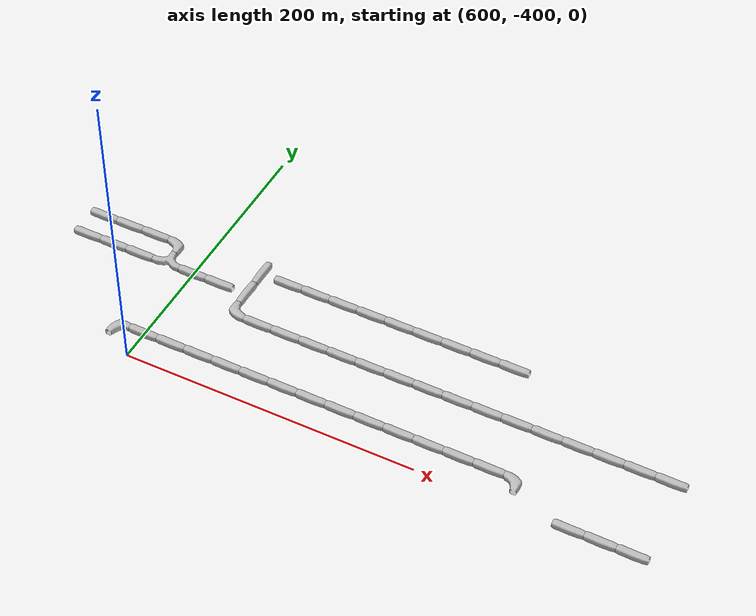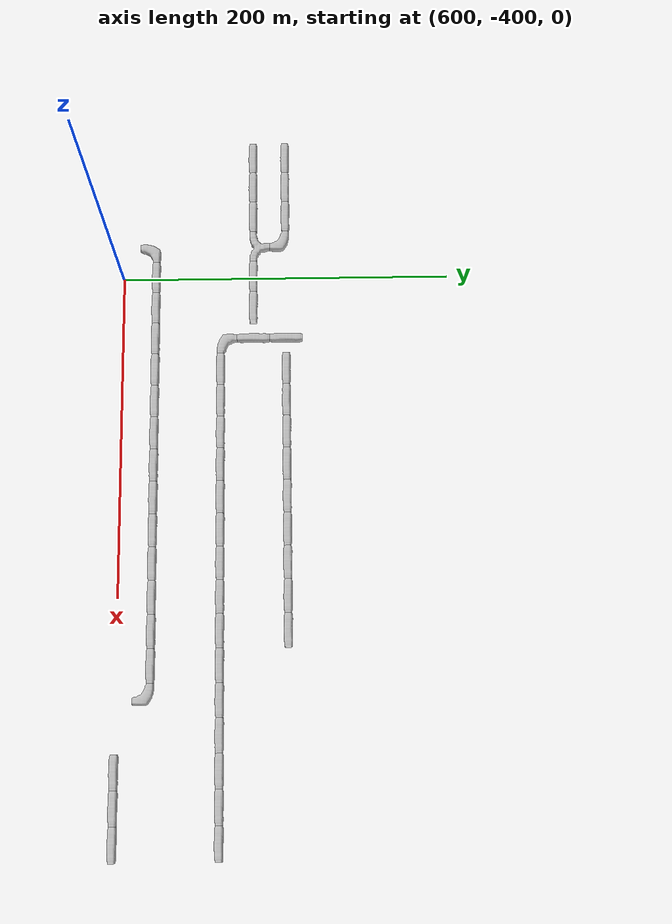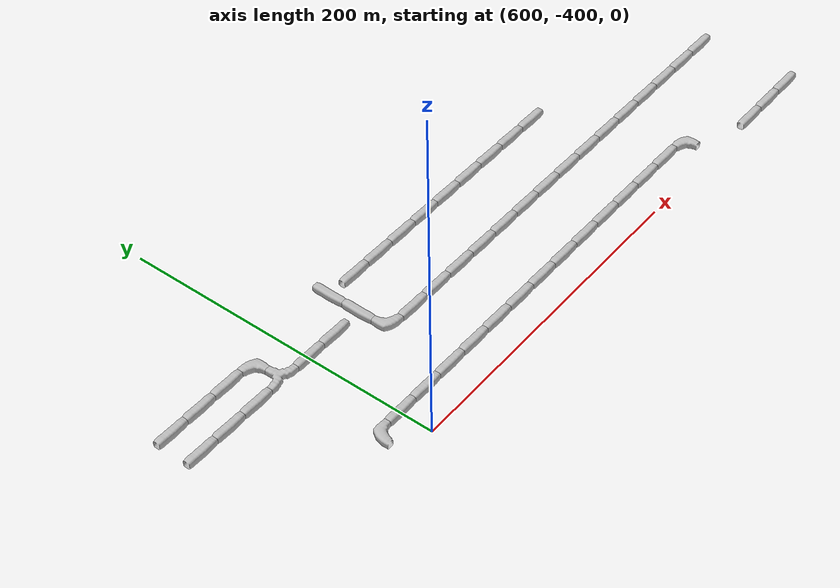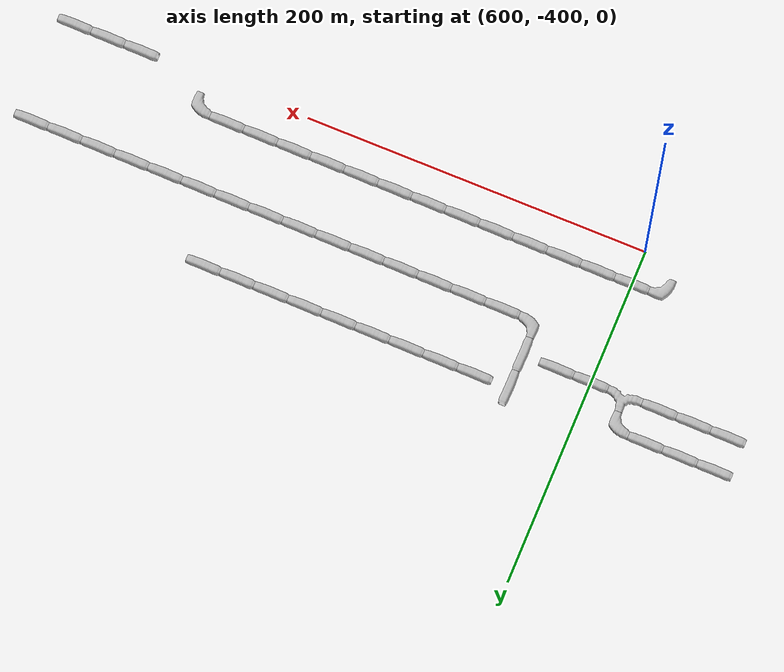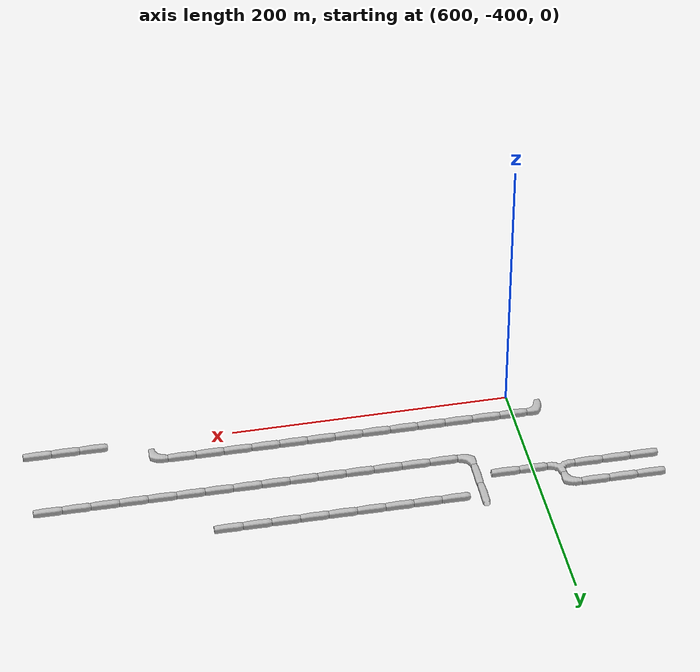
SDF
<sdf version="1.6">
 <world name="cave_32000_2">
  <include>
   <static>true</static>
   <name>cave_32_-15</name>
   <pose>640 -300 0 0 0 0.0</pose>
   <uri>model://cave_straight_20m</uri>
  </include>
  <include>
   <static>true</static>
   <name>cave_32_-16</name>
   <pose>640 -320 0 0 0 0.0</pose>
   <uri>model://cave_straight_20m</uri>
  </include>
  <include>
   <static>true</static>
   <name>cave_32_-17</name>
   <pose>640 -340 0 0 0 0.0</pose>
   <uri>model://cave_L_20m</uri>
  </include>
  <include>
   <static>true</static>
   <name>cave_33_-17</name>
   <pose>660 -340 0 0 0 1.5707963267948966</pose>
   <uri>model://cave_straight_20m</uri>
  </include>
  <include>
   <static>true</static>
   <name>cave_34_-17</name>
   <pose>680 -340 0 0 0 1.5707963267948966</pose>
   <uri>model://cave_straight_20m</uri>
  </include>
  <include>
   <static>true</static>
   <name>cave_35_-17</name>
   <pose>700 -340 0 0 0 1.5707963267948966</pose>
   <uri>model://cave_straight_20m</uri>
  </include>
  <include>
   <static>true</static>
   <name>cave_36_-17</name>
   <pose>720 -340 0 0 0 1.5707963267948966</pose>
   <uri>model://cave_straight_20m</uri>
  </include>
  <include>
   <static>true</static>
   <name>cave_37_-17</name>
   <pose>740 -340 0 0 0 1.5707963267948966</pose>
   <uri>model://cave_straight_20m</uri>
  </include>
  <include>
   <static>true</static>
   <name>cave_38_-17</name>
   <pose>760 -340 0 0 0 1.5707963267948966</pose>
   <uri>model://cave_straight_20m</uri>
  </include>
  <include>
   <static>true</static>
   <name>cave_39_-17</name>
   <pose>780 -340 0 0 0 1.5707963267948966</pose>
   <uri>model://cave_straight_20m</uri>
  </include>
  <include>
   <static>true</static>
   <name>cave_40_-17</name>
   <pose>800 -340 0 0 0 1.5707963267948966</pose>
   <uri>model://cave_straight_20m</uri>
  </include>
  <include>
   <static>true</static>
   <name>cave_41_-17</name>
   <pose>820 -340 0 0 0 1.5707963267948966</pose>
   <uri>model://cave_straight_20m</uri>
  </include>
  <include>
   <static>true</static>
   <name>cave_42_-17</name>
   <pose>840 -340 0 0 0 1.5707963267948966</pose>
   <uri>model://cave_straight_20m</uri>
  </include>
  <include>
   <static>true</static>
   <name>cave_43_-17</name>
   <pose>860 -340 0 0 0 1.5707963267948966</pose>
   <uri>model://cave_straight_20m</uri>
  </include>
  <include>
   <static>true</static>
   <name>cave_44_-17</name>
   <pose>880 -340 0 0 0 1.5707963267948966</pose>
   <uri>model://cave_straight_20m</uri>
  </include>
  <include>
   <static>true</static>
   <name>cave_45_-17</name>
   <pose>900 -340 0 0 0 1.5707963267948966</pose>
   <uri>model://cave_straight_20m</uri>
  </include>
  <include>
   <static>true</static>
   <name>cave_46_-17</name>
   <pose>920 -340 0 0 0 1.5707963267948966</pose>
   <uri>model://cave_straight_20m</uri>
  </include>
  <include>
   <static>true</static>
   <name>cave_47_-17</name>
   <pose>940 -340 0 0 0 1.5707963267948966</pose>
   <uri>model://cave_straight_20m</uri>
  </include>
  <include>
   <static>true</static>
   <name>cave_26_-15</name>
   <pose>520 -300 0 0 0 1.5707963267948966</pose>
   <uri>model://cave_straight_20m</uri>
  </include>
  <include>
   <static>true</static>
   <name>cave_27_-15</name>
   <pose>540 -300 0 0 0 1.5707963267948966</pose>
   <uri>model://cave_straight_20m</uri>
  </include>
  <include>
   <static>true</static>
   <name>cave_28_-15</name>
   <pose>560 -300 0 0 0 1.5707963267948966</pose>
   <uri>model://cave_straight_20m</uri>
  </include>
  <include>
   <static>true</static>
   <name>cave_29_-15</name>
   <pose>580 -300 0 0 0 3.141592653589793</pose>
   <uri>model://cave_L_20m</uri>
  </include>
  <include>
   <static>true</static>
   <name>cave_29_-16</name>
   <pose>580 -320 0 0 0 0.0</pose>
   <uri>model://cave_3way_20m</uri>
  </include>
  <include>
   <static>true</static>
   <name>cave_30_-16</name>
   <pose>600 -320 0 0 0 1.5707963267948966</pose>
   <uri>model://cave_straight_20m</uri>
  </include>
  <include>
   <static>true</static>
   <name>cave_31_-16</name>
   <pose>620 -320 0 0 0 1.5707963267948966</pose>
   <uri>model://cave_straight_20m</uri>
  </include>
  <include>
   <static>true</static>
   <name>cave_28_-16</name>
   <pose>560 -320 0 0 0 1.5707963267948966</pose>
   <uri>model://cave_straight_20m</uri>
  </include>
  <include>
   <static>true</static>
   <name>cave_27_-16</name>
   <pose>540 -320 0 0 0 1.5707963267948966</pose>
   <uri>model://cave_straight_20m</uri>
  </include>
  <include>
   <static>true</static>
   <name>cave_26_-16</name>
   <pose>520 -320 0 0 0 1.5707963267948966</pose>
   <uri>model://cave_straight_20m</uri>
  </include>
  <include>
   <static>true</static>
   <name>cave_47_-20</name>
   <pose>940 -400 0 0 0 1.5707963267948966</pose>
   <uri>model://cave_straight_20m</uri>
  </include>
  <include>
   <static>true</static>
   <name>cave_46_-20</name>
   <pose>920 -400 0 0 0 1.5707963267948966</pose>
   <uri>model://cave_straight_20m</uri>
  </include>
  <include>
   <static>true</static>
   <name>cave_45_-20</name>
   <pose>900 -400 0 0 0 1.5707963267948966</pose>
   <uri>model://cave_straight_20m</uri>
  </include>
  <include>
   <static>true</static>
   <name>cave_43_-19</name>
   <pose>860 -380 0 0 0 3.141592653589793</pose>
   <uri>model://cave_L_20m</uri>
  </include>
  <include>
   <static>true</static>
   <name>cave_42_-19</name>
   <pose>840 -380 0 0 0 1.5707963267948966</pose>
   <uri>model://cave_straight_20m</uri>
  </include>
  <include>
   <static>true</static>
   <name>cave_41_-19</name>
   <pose>820 -380 0 0 0 1.5707963267948966</pose>
   <uri>model://cave_straight_20m</uri>
  </include>
  <include>
   <static>true</static>
   <name>cave_40_-19</name>
   <pose>800 -380 0 0 0 1.5707963267948966</pose>
   <uri>model://cave_straight_20m</uri>
  </include>
  <include>
   <static>true</static>
   <name>cave_39_-19</name>
   <pose>780 -380 0 0 0 1.5707963267948966</pose>
   <uri>model://cave_straight_20m</uri>
  </include>
  <include>
   <static>true</static>
   <name>cave_38_-19</name>
   <pose>760 -380 0 0 0 1.5707963267948966</pose>
   <uri>model://cave_straight_20m</uri>
  </include>
  <include>
   <static>true</static>
   <name>cave_37_-19</name>
   <pose>740 -380 0 0 0 1.5707963267948966</pose>
   <uri>model://cave_straight_20m</uri>
  </include>
  <include>
   <static>true</static>
   <name>cave_36_-19</name>
   <pose>720 -380 0 0 0 1.5707963267948966</pose>
   <uri>model://cave_straight_20m</uri>
  </include>
  <include>
   <static>true</static>
   <name>cave_35_-19</name>
   <pose>700 -380 0 0 0 1.5707963267948966</pose>
   <uri>model://cave_straight_20m</uri>
  </include>
  <include>
   <static>true</static>
   <name>cave_34_-19</name>
   <pose>680 -380 0 0 0 1.5707963267948966</pose>
   <uri>model://cave_straight_20m</uri>
  </include>
  <include>
   <static>true</static>
   <name>cave_33_-19</name>
   <pose>660 -380 0 0 0 1.5707963267948966</pose>
   <uri>model://cave_straight_20m</uri>
  </include>
  <include>
   <static>true</static>
   <name>cave_32_-19</name>
   <pose>640 -380 0 0 0 1.5707963267948966</pose>
   <uri>model://cave_straight_20m</uri>
  </include>
  <include>
   <static>true</static>
   <name>cave_31_-19</name>
   <pose>620 -380 0 0 0 1.5707963267948966</pose>
   <uri>model://cave_straight_20m</uri>
  </include>
  <include>
   <static>true</static>
   <name>cave_30_-19</name>
   <pose>600 -380 0 0 0 1.5707963267948966</pose>
   <uri>model://cave_straight_20m</uri>
  </include>
  <include>
   <static>true</static>
   <name>cave_29_-19</name>
   <pose>580 -380 0 0 0 -1.5707963267948966</pose>
   <uri>model://cave_L_20m</uri>
  </include>
  <include>
   <static>true</static>
   <name>cave_41_-15</name>
   <pose>820 -300 0 0 0 1.5707963267948966</pose>
   <uri>model://cave_straight_20m</uri>
  </include>
  <include>
   <static>true</static>
   <name>cave_40_-15</name>
   <pose>800 -300 0 0 0 1.5707963267948966</pose>
   <uri>model://cave_straight_20m</uri>
  </include>
  <include>
   <static>true</static>
   <name>cave_39_-15</name>
   <pose>780 -300 0 0 0 1.5707963267948966</pose>
   <uri>model://cave_straight_20m</uri>
  </include>
  <include>
   <static>true</static>
   <name>cave_38_-15</name>
   <pose>760 -300 0 0 0 1.5707963267948966</pose>
   <uri>model://cave_straight_20m</uri>
  </include>
  <include>
   <static>true</static>
   <name>cave_37_-15</name>
   <pose>740 -300 0 0 0 1.5707963267948966</pose>
   <uri>model://cave_straight_20m</uri>
  </include>
  <include>
   <static>true</static>
   <name>cave_36_-15</name>
   <pose>720 -300 0 0 0 1.5707963267948966</pose>
   <uri>model://cave_straight_20m</uri>
  </include>
  <include>
   <static>true</static>
   <name>cave_35_-15</name>
   <pose>700 -300 0 0 0 1.5707963267948966</pose>
   <uri>model://cave_straight_20m</uri>
  </include>
  <include>
   <static>true</static>
   <name>cave_34_-15</name>
   <pose>680 -300 0 0 0 1.5707963267948966</pose>
   <uri>model://cave_straight_20m</uri>
  </include>
  <include>
   <static>true</static>
   <name>cave_33_-15</name>
   <pose>660 -300 0 0 0 1.5707963267948966</pose>
   <uri>model://cave_straight_20m</uri>
  </include>
 </world>
</sdf>
